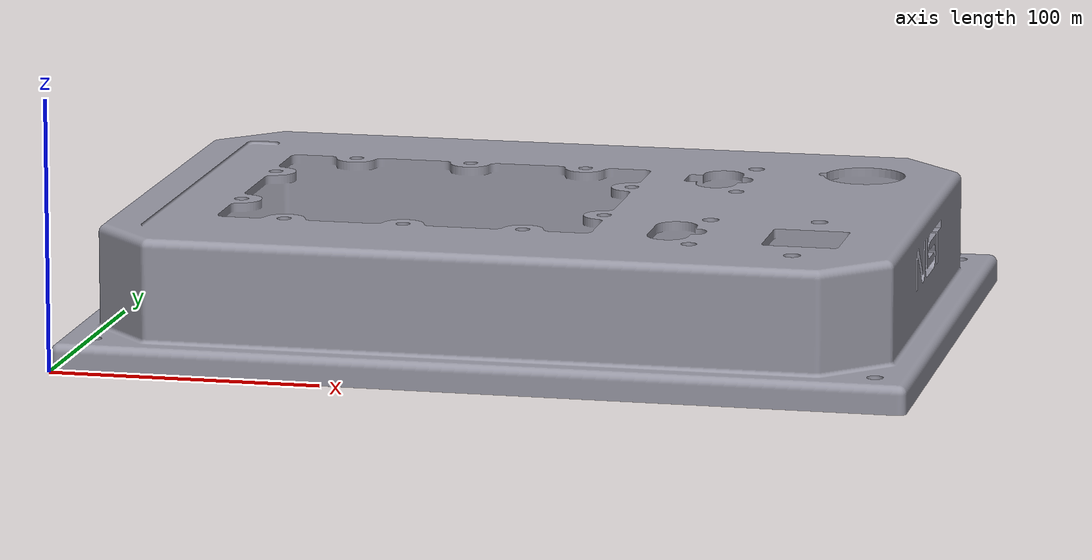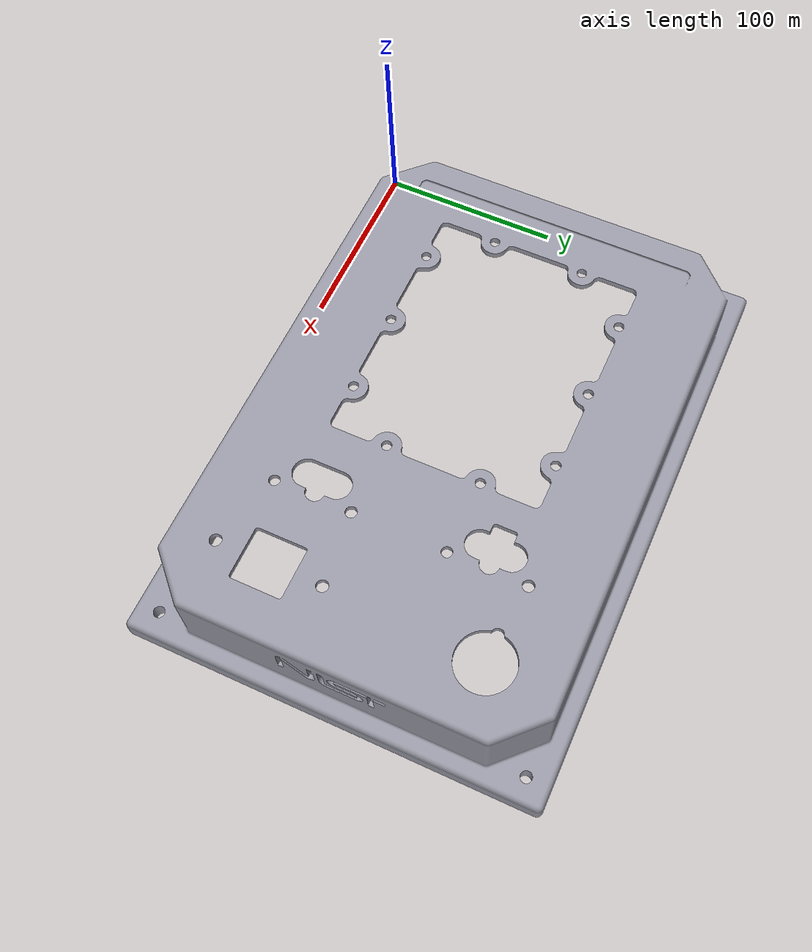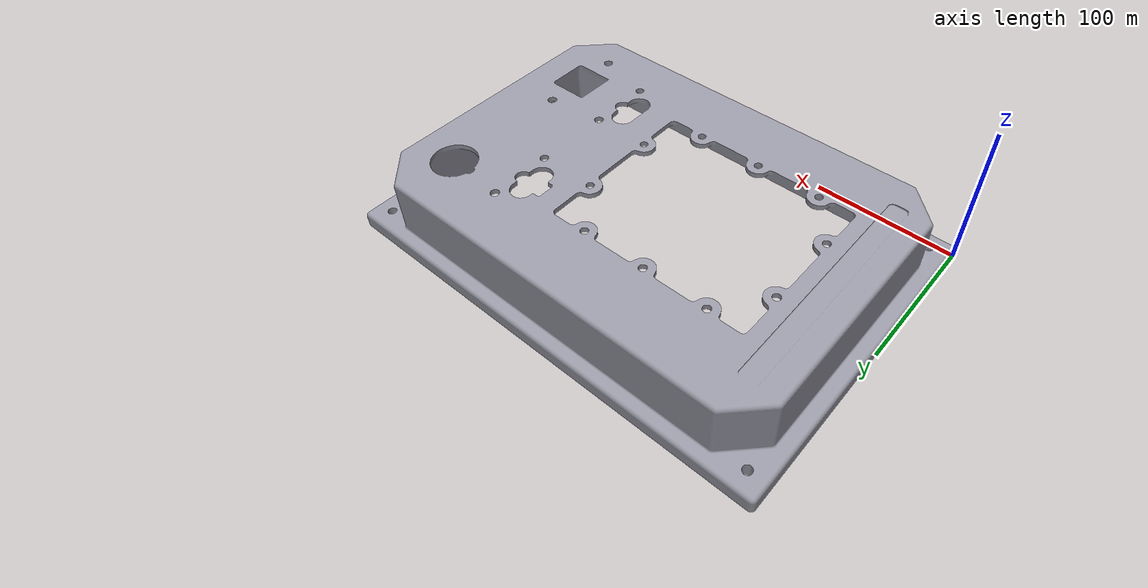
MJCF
<mujoco model="nist_lid">
  <asset>
    <material name="steel_visual_nist_lid" rgba="0.6 0.6 0.65 1.0" specular="0.8" shininess="0.9" reflectance="0.6"/>
    <material name="steel_nist_lid" rgba="0.6 0.6 0.65 0.0" specular="0.8" shininess="0.9" reflectance="0.6"/>
    <mesh name="nist_lid" file="collision/nist_lid.obj"/>
    <mesh name="nist_lid_collision_0" file="collision/nist_lid_collision_0.obj"/>
    <mesh name="nist_lid_collision_1" file="collision/nist_lid_collision_1.obj"/>
    <mesh name="nist_lid_collision_2" file="collision/nist_lid_collision_2.obj"/>
    <mesh name="nist_lid_collision_3" file="collision/nist_lid_collision_3.obj"/>
    <mesh name="nist_lid_collision_4" file="collision/nist_lid_collision_4.obj"/>
    <mesh name="nist_lid_collision_5" file="collision/nist_lid_collision_5.obj"/>
    <mesh name="nist_lid_collision_6" file="collision/nist_lid_collision_6.obj"/>
    <mesh name="nist_lid_collision_7" file="collision/nist_lid_collision_7.obj"/>
    <mesh name="nist_lid_collision_8" file="collision/nist_lid_collision_8.obj"/>
    <mesh name="nist_lid_collision_9" file="collision/nist_lid_collision_9.obj"/>
    <mesh name="nist_lid_collision_10" file="collision/nist_lid_collision_10.obj"/>
    <mesh name="nist_lid_collision_11" file="collision/nist_lid_collision_11.obj"/>
    <mesh name="nist_lid_collision_12" file="collision/nist_lid_collision_12.obj"/>
    <mesh name="nist_lid_collision_13" file="collision/nist_lid_collision_13.obj"/>
    <mesh name="nist_lid_collision_14" file="collision/nist_lid_collision_14.obj"/>
    <mesh name="nist_lid_collision_15" file="collision/nist_lid_collision_15.obj"/>
    <mesh name="nist_lid_collision_16" file="collision/nist_lid_collision_16.obj"/>
    <mesh name="nist_lid_collision_17" file="collision/nist_lid_collision_17.obj"/>
    <mesh name="nist_lid_collision_18" file="collision/nist_lid_collision_18.obj"/>
    <mesh name="nist_lid_collision_19" file="collision/nist_lid_collision_19.obj"/>
    <mesh name="nist_lid_collision_20" file="collision/nist_lid_collision_20.obj"/>
    <mesh name="nist_lid_collision_21" file="collision/nist_lid_collision_21.obj"/>
    <mesh name="nist_lid_collision_22" file="collision/nist_lid_collision_22.obj"/>
    <mesh name="nist_lid_collision_23" file="collision/nist_lid_collision_23.obj"/>
    <mesh name="nist_lid_collision_24" file="collision/nist_lid_collision_24.obj"/>
    <mesh name="nist_lid_collision_25" file="collision/nist_lid_collision_25.obj"/>
    <mesh name="nist_lid_collision_26" file="collision/nist_lid_collision_26.obj"/>
    <mesh name="nist_lid_collision_27" file="collision/nist_lid_collision_27.obj"/>
    <mesh name="nist_lid_collision_28" file="collision/nist_lid_collision_28.obj"/>
    <mesh name="nist_lid_collision_29" file="collision/nist_lid_collision_29.obj"/>
    <mesh name="nist_lid_collision_30" file="collision/nist_lid_collision_30.obj"/>
    <mesh name="nist_lid_collision_31" file="collision/nist_lid_collision_31.obj"/>
    <mesh name="nist_lid_collision_32" file="collision/nist_lid_collision_32.obj"/>
    <mesh name="nist_lid_collision_33" file="collision/nist_lid_collision_33.obj"/>
    <mesh name="nist_lid_collision_34" file="collision/nist_lid_collision_34.obj"/>
    <mesh name="nist_lid_collision_35" file="collision/nist_lid_collision_35.obj"/>
    <mesh name="nist_lid_collision_36" file="collision/nist_lid_collision_36.obj"/>
    <mesh name="nist_lid_collision_37" file="collision/nist_lid_collision_37.obj"/>
    <mesh name="nist_lid_collision_38" file="collision/nist_lid_collision_38.obj"/>
    <mesh name="nist_lid_collision_39" file="collision/nist_lid_collision_39.obj"/>
    <mesh name="nist_lid_collision_40" file="collision/nist_lid_collision_40.obj"/>
    <mesh name="nist_lid_collision_41" file="collision/nist_lid_collision_41.obj"/>
    <mesh name="nist_lid_collision_42" file="collision/nist_lid_collision_42.obj"/>
    <mesh name="nist_lid_collision_43" file="collision/nist_lid_collision_43.obj"/>
    <mesh name="nist_lid_collision_44" file="collision/nist_lid_collision_44.obj"/>
    <mesh name="nist_lid_collision_45" file="collision/nist_lid_collision_45.obj"/>
    <mesh name="nist_lid_collision_46" file="collision/nist_lid_collision_46.obj"/>
    <mesh name="nist_lid_collision_47" file="collision/nist_lid_collision_47.obj"/>
    <mesh name="nist_lid_collision_48" file="collision/nist_lid_collision_48.obj"/>
    <mesh name="nist_lid_collision_49" file="collision/nist_lid_collision_49.obj"/>
    <mesh name="nist_lid_collision_50" file="collision/nist_lid_collision_50.obj"/>
    <mesh name="nist_lid_collision_51" file="collision/nist_lid_collision_51.obj"/>
    <mesh name="nist_lid_collision_52" file="collision/nist_lid_collision_52.obj"/>
    <mesh name="nist_lid_collision_53" file="collision/nist_lid_collision_53.obj"/>
    <mesh name="nist_lid_collision_54" file="collision/nist_lid_collision_54.obj"/>
    <mesh name="nist_lid_collision_55" file="collision/nist_lid_collision_55.obj"/>
    <mesh name="nist_lid_collision_56" file="collision/nist_lid_collision_56.obj"/>
    <mesh name="nist_lid_collision_57" file="collision/nist_lid_collision_57.obj"/>
    <mesh name="nist_lid_collision_58" file="collision/nist_lid_collision_58.obj"/>
    <mesh name="nist_lid_collision_59" file="collision/nist_lid_collision_59.obj"/>
    <mesh name="nist_lid_collision_60" file="collision/nist_lid_collision_60.obj"/>
    <mesh name="nist_lid_collision_61" file="collision/nist_lid_collision_61.obj"/>
    <mesh name="nist_lid_collision_62" file="collision/nist_lid_collision_62.obj"/>
    <mesh name="nist_lid_collision_63" file="collision/nist_lid_collision_63.obj"/>
    <mesh name="nist_lid_collision_64" file="collision/nist_lid_collision_64.obj"/>
    <mesh name="nist_lid_collision_65" file="collision/nist_lid_collision_65.obj"/>
    <mesh name="nist_lid_collision_66" file="collision/nist_lid_collision_66.obj"/>
    <mesh name="nist_lid_collision_67" file="collision/nist_lid_collision_67.obj"/>
    <mesh name="nist_lid_collision_68" file="collision/nist_lid_collision_68.obj"/>
    <mesh name="nist_lid_collision_69" file="collision/nist_lid_collision_69.obj"/>
    <mesh name="nist_lid_collision_70" file="collision/nist_lid_collision_70.obj"/>
    <mesh name="nist_lid_collision_71" file="collision/nist_lid_collision_71.obj"/>
    <mesh name="nist_lid_collision_72" file="collision/nist_lid_collision_72.obj"/>
    <mesh name="nist_lid_collision_73" file="collision/nist_lid_collision_73.obj"/>
    <mesh name="nist_lid_collision_74" file="collision/nist_lid_collision_74.obj"/>
    <mesh name="nist_lid_collision_75" file="collision/nist_lid_collision_75.obj"/>
    <mesh name="nist_lid_collision_76" file="collision/nist_lid_collision_76.obj"/>
    <mesh name="nist_lid_collision_77" file="collision/nist_lid_collision_77.obj"/>
    <mesh name="nist_lid_collision_78" file="collision/nist_lid_collision_78.obj"/>
    <mesh name="nist_lid_collision_79" file="collision/nist_lid_collision_79.obj"/>
    <mesh name="nist_lid_collision_80" file="collision/nist_lid_collision_80.obj"/>
    <mesh name="nist_lid_collision_81" file="collision/nist_lid_collision_81.obj"/>
    <mesh name="nist_lid_collision_82" file="collision/nist_lid_collision_82.obj"/>
    <mesh name="nist_lid_collision_83" file="collision/nist_lid_collision_83.obj"/>
    <mesh name="nist_lid_collision_84" file="collision/nist_lid_collision_84.obj"/>
    <mesh name="nist_lid_collision_85" file="collision/nist_lid_collision_85.obj"/>
    <mesh name="nist_lid_collision_86" file="collision/nist_lid_collision_86.obj"/>
    <mesh name="nist_lid_collision_87" file="collision/nist_lid_collision_87.obj"/>
    <mesh name="nist_lid_collision_88" file="collision/nist_lid_collision_88.obj"/>
    <mesh name="nist_lid_collision_89" file="collision/nist_lid_collision_89.obj"/>
    <mesh name="nist_lid_collision_90" file="collision/nist_lid_collision_90.obj"/>
    <mesh name="nist_lid_collision_91" file="collision/nist_lid_collision_91.obj"/>
    <mesh name="nist_lid_collision_92" file="collision/nist_lid_collision_92.obj"/>
    <mesh name="nist_lid_collision_93" file="collision/nist_lid_collision_93.obj"/>
    <mesh name="nist_lid_collision_94" file="collision/nist_lid_collision_94.obj"/>
    <mesh name="nist_lid_collision_95" file="collision/nist_lid_collision_95.obj"/>
    <mesh name="nist_lid_collision_96" file="collision/nist_lid_collision_96.obj"/>
    <mesh name="nist_lid_collision_97" file="collision/nist_lid_collision_97.obj"/>
    <mesh name="nist_lid_collision_98" file="collision/nist_lid_collision_98.obj"/>
    <mesh name="nist_lid_collision_99" file="collision/nist_lid_collision_99.obj"/>
    <mesh name="nist_lid_collision_100" file="collision/nist_lid_collision_100.obj"/>
    <mesh name="nist_lid_collision_101" file="collision/nist_lid_collision_101.obj"/>
    <mesh name="nist_lid_collision_102" file="collision/nist_lid_collision_102.obj"/>
    <mesh name="nist_lid_collision_103" file="collision/nist_lid_collision_103.obj"/>
    <mesh name="nist_lid_collision_104" file="collision/nist_lid_collision_104.obj"/>
    <mesh name="nist_lid_collision_105" file="collision/nist_lid_collision_105.obj"/>
    <mesh name="nist_lid_collision_106" file="collision/nist_lid_collision_106.obj"/>
    <mesh name="nist_lid_collision_107" file="collision/nist_lid_collision_107.obj"/>
    <mesh name="nist_lid_collision_108" file="collision/nist_lid_collision_108.obj"/>
    <mesh name="nist_lid_collision_109" file="collision/nist_lid_collision_109.obj"/>
    <mesh name="nist_lid_collision_110" file="collision/nist_lid_collision_110.obj"/>
    <mesh name="nist_lid_collision_111" file="collision/nist_lid_collision_111.obj"/>
    <mesh name="nist_lid_collision_112" file="collision/nist_lid_collision_112.obj"/>
    <mesh name="nist_lid_collision_113" file="collision/nist_lid_collision_113.obj"/>
    <mesh name="nist_lid_collision_114" file="collision/nist_lid_collision_114.obj"/>
    <mesh name="nist_lid_collision_115" file="collision/nist_lid_collision_115.obj"/>
    <mesh name="nist_lid_collision_116" file="collision/nist_lid_collision_116.obj"/>
    <mesh name="nist_lid_collision_117" file="collision/nist_lid_collision_117.obj"/>
    <mesh name="nist_lid_collision_118" file="collision/nist_lid_collision_118.obj"/>
    <mesh name="nist_lid_collision_119" file="collision/nist_lid_collision_119.obj"/>
    <mesh name="nist_lid_collision_120" file="collision/nist_lid_collision_120.obj"/>
    <mesh name="nist_lid_collision_121" file="collision/nist_lid_collision_121.obj"/>
    <mesh name="nist_lid_collision_122" file="collision/nist_lid_collision_122.obj"/>
    <mesh name="nist_lid_collision_123" file="collision/nist_lid_collision_123.obj"/>
    <mesh name="nist_lid_collision_124" file="collision/nist_lid_collision_124.obj"/>
    <mesh name="nist_lid_collision_125" file="collision/nist_lid_collision_125.obj"/>
    <mesh name="nist_lid_collision_126" file="collision/nist_lid_collision_126.obj"/>
    <mesh name="nist_lid_collision_127" file="collision/nist_lid_collision_127.obj"/>
    <mesh name="nist_lid_collision_128" file="collision/nist_lid_collision_128.obj"/>
    <mesh name="nist_lid_collision_129" file="collision/nist_lid_collision_129.obj"/>
    <mesh name="nist_lid_collision_130" file="collision/nist_lid_collision_130.obj"/>
    <mesh name="nist_lid_collision_131" file="collision/nist_lid_collision_131.obj"/>
    <mesh name="nist_lid_collision_132" file="collision/nist_lid_collision_132.obj"/>
    <mesh name="nist_lid_collision_133" file="collision/nist_lid_collision_133.obj"/>
    <mesh name="nist_lid_collision_134" file="collision/nist_lid_collision_134.obj"/>
  </asset>
  <worldbody>
    <body>
      <body name="nist_lid">
        <geom mesh="nist_lid" type="mesh" group="1" contype="0" conaffinity="0" material="steel_visual_nist_lid"/>
        <geom mesh="nist_lid_collision_0" type="mesh" group="0" density="1800" friction="0.95 0.3 0.1" solimp="0.998 0.998 0.001" solref="0.00001 1" material="steel_nist_lid"/>
        <geom mesh="nist_lid_collision_1" type="mesh" group="0" density="1800" friction="0.95 0.3 0.1" solimp="0.998 0.998 0.001" solref="0.00001 1" material="steel_nist_lid"/>
        <geom mesh="nist_lid_collision_2" type="mesh" group="0" density="1800" friction="0.95 0.3 0.1" solimp="0.998 0.998 0.001" solref="0.00001 1" material="steel_nist_lid"/>
        <geom mesh="nist_lid_collision_3" type="mesh" group="0" density="1800" friction="0.95 0.3 0.1" solimp="0.998 0.998 0.001" solref="0.00001 1" material="steel_nist_lid"/>
        <geom mesh="nist_lid_collision_4" type="mesh" group="0" density="1800" friction="0.95 0.3 0.1" solimp="0.998 0.998 0.001" solref="0.00001 1" material="steel_nist_lid"/>
        <geom mesh="nist_lid_collision_5" type="mesh" group="0" density="1800" friction="0.95 0.3 0.1" solimp="0.998 0.998 0.001" solref="0.00001 1" material="steel_nist_lid"/>
        <geom mesh="nist_lid_collision_6" type="mesh" group="0" density="1800" friction="0.95 0.3 0.1" solimp="0.998 0.998 0.001" solref="0.00001 1" material="steel_nist_lid"/>
        <geom mesh="nist_lid_collision_7" type="mesh" group="0" density="1800" friction="0.95 0.3 0.1" solimp="0.998 0.998 0.001" solref="0.00001 1" material="steel_nist_lid"/>
        <geom mesh="nist_lid_collision_8" type="mesh" group="0" density="1800" friction="0.95 0.3 0.1" solimp="0.998 0.998 0.001" solref="0.00001 1" material="steel_nist_lid"/>
        <geom mesh="nist_lid_collision_9" type="mesh" group="0" density="1800" friction="0.95 0.3 0.1" solimp="0.998 0.998 0.001" solref="0.00001 1" material="steel_nist_lid"/>
        <geom mesh="nist_lid_collision_10" type="mesh" group="0" density="1800" friction="0.95 0.3 0.1" solimp="0.998 0.998 0.001" solref="0.00001 1" material="steel_nist_lid"/>
        <geom mesh="nist_lid_collision_11" type="mesh" group="0" density="1800" friction="0.95 0.3 0.1" solimp="0.998 0.998 0.001" solref="0.00001 1" material="steel_nist_lid"/>
        <geom mesh="nist_lid_collision_12" type="mesh" group="0" density="1800" friction="0.95 0.3 0.1" solimp="0.998 0.998 0.001" solref="0.00001 1" material="steel_nist_lid"/>
        <geom mesh="nist_lid_collision_13" type="mesh" group="0" density="1800" friction="0.95 0.3 0.1" solimp="0.998 0.998 0.001" solref="0.00001 1" material="steel_nist_lid"/>
        <geom mesh="nist_lid_collision_14" type="mesh" group="0" density="1800" friction="0.95 0.3 0.1" solimp="0.998 0.998 0.001" solref="0.00001 1" material="steel_nist_lid"/>
        <geom mesh="nist_lid_collision_15" type="mesh" group="0" density="1800" friction="0.95 0.3 0.1" solimp="0.998 0.998 0.001" solref="0.00001 1" material="steel_nist_lid"/>
        <geom mesh="nist_lid_collision_16" type="mesh" group="0" density="1800" friction="0.95 0.3 0.1" solimp="0.998 0.998 0.001" solref="0.00001 1" material="steel_nist_lid"/>
        <geom mesh="nist_lid_collision_17" type="mesh" group="0" density="1800" friction="0.95 0.3 0.1" solimp="0.998 0.998 0.001" solref="0.00001 1" material="steel_nist_lid"/>
        <geom mesh="nist_lid_collision_18" type="mesh" group="0" density="1800" friction="0.95 0.3 0.1" solimp="0.998 0.998 0.001" solref="0.00001 1" material="steel_nist_lid"/>
        <geom mesh="nist_lid_collision_19" type="mesh" group="0" density="1800" friction="0.95 0.3 0.1" solimp="0.998 0.998 0.001" solref="0.00001 1" material="steel_nist_lid"/>
        <geom mesh="nist_lid_collision_20" type="mesh" group="0" density="1800" friction="0.95 0.3 0.1" solimp="0.998 0.998 0.001" solref="0.00001 1" material="steel_nist_lid"/>
        <geom mesh="nist_lid_collision_21" type="mesh" group="0" density="1800" friction="0.95 0.3 0.1" solimp="0.998 0.998 0.001" solref="0.00001 1" material="steel_nist_lid"/>
        <geom mesh="nist_lid_collision_22" type="mesh" group="0" density="1800" friction="0.95 0.3 0.1" solimp="0.998 0.998 0.001" solref="0.00001 1" material="steel_nist_lid"/>
        <geom mesh="nist_lid_collision_23" type="mesh" group="0" density="1800" friction="0.95 0.3 0.1" solimp="0.998 0.998 0.001" solref="0.00001 1" material="steel_nist_lid"/>
        <geom mesh="nist_lid_collision_24" type="mesh" group="0" density="1800" friction="0.95 0.3 0.1" solimp="0.998 0.998 0.001" solref="0.00001 1" material="steel_nist_lid"/>
        <geom mesh="nist_lid_collision_25" type="mesh" group="0" density="1800" friction="0.95 0.3 0.1" solimp="0.998 0.998 0.001" solref="0.00001 1" material="steel_nist_lid"/>
        <geom mesh="nist_lid_collision_26" type="mesh" group="0" density="1800" friction="0.95 0.3 0.1" solimp="0.998 0.998 0.001" solref="0.00001 1" material="steel_nist_lid"/>
        <geom mesh="nist_lid_collision_27" type="mesh" group="0" density="1800" friction="0.95 0.3 0.1" solimp="0.998 0.998 0.001" solref="0.00001 1" material="steel_nist_lid"/>
        <geom mesh="nist_lid_collision_28" type="mesh" group="0" density="1800" friction="0.95 0.3 0.1" solimp="0.998 0.998 0.001" solref="0.00001 1" material="steel_nist_lid"/>
        <geom mesh="nist_lid_collision_29" type="mesh" group="0" density="1800" friction="0.95 0.3 0.1" solimp="0.998 0.998 0.001" solref="0.00001 1" material="steel_nist_lid"/>
        <geom mesh="nist_lid_collision_30" type="mesh" group="0" density="1800" friction="0.95 0.3 0.1" solimp="0.998 0.998 0.001" solref="0.00001 1" material="steel_nist_lid"/>
        <geom mesh="nist_lid_collision_31" type="mesh" group="0" density="1800" friction="0.95 0.3 0.1" solimp="0.998 0.998 0.001" solref="0.00001 1" material="steel_nist_lid"/>
        <geom mesh="nist_lid_collision_32" type="mesh" group="0" density="1800" friction="0.95 0.3 0.1" solimp="0.998 0.998 0.001" solref="0.00001 1" material="steel_nist_lid"/>
        <geom mesh="nist_lid_collision_33" type="mesh" group="0" density="1800" friction="0.95 0.3 0.1" solimp="0.998 0.998 0.001" solref="0.00001 1" material="steel_nist_lid"/>
        <geom mesh="nist_lid_collision_34" type="mesh" group="0" density="1800" friction="0.95 0.3 0.1" solimp="0.998 0.998 0.001" solref="0.00001 1" material="steel_nist_lid"/>
        <geom mesh="nist_lid_collision_35" type="mesh" group="0" density="1800" friction="0.95 0.3 0.1" solimp="0.998 0.998 0.001" solref="0.00001 1" material="steel_nist_lid"/>
        <geom mesh="nist_lid_collision_36" type="mesh" group="0" density="1800" friction="0.95 0.3 0.1" solimp="0.998 0.998 0.001" solref="0.00001 1" material="steel_nist_lid"/>
        <geom mesh="nist_lid_collision_37" type="mesh" group="0" density="1800" friction="0.95 0.3 0.1" solimp="0.998 0.998 0.001" solref="0.00001 1" material="steel_nist_lid"/>
        <geom mesh="nist_lid_collision_38" type="mesh" group="0" density="1800" friction="0.95 0.3 0.1" solimp="0.998 0.998 0.001" solref="0.00001 1" material="steel_nist_lid"/>
        <geom mesh="nist_lid_collision_39" type="mesh" group="0" density="1800" friction="0.95 0.3 0.1" solimp="0.998 0.998 0.001" solref="0.00001 1" material="steel_nist_lid"/>
        <geom mesh="nist_lid_collision_40" type="mesh" group="0" density="1800" friction="0.95 0.3 0.1" solimp="0.998 0.998 0.001" solref="0.00001 1" material="steel_nist_lid"/>
        <geom mesh="nist_lid_collision_41" type="mesh" group="0" density="1800" friction="0.95 0.3 0.1" solimp="0.998 0.998 0.001" solref="0.00001 1" material="steel_nist_lid"/>
        <geom mesh="nist_lid_collision_42" type="mesh" group="0" density="1800" friction="0.95 0.3 0.1" solimp="0.998 0.998 0.001" solref="0.00001 1" material="steel_nist_lid"/>
        <geom mesh="nist_lid_collision_43" type="mesh" group="0" density="1800" friction="0.95 0.3 0.1" solimp="0.998 0.998 0.001" solref="0.00001 1" material="steel_nist_lid"/>
        <geom mesh="nist_lid_collision_44" type="mesh" group="0" density="1800" friction="0.95 0.3 0.1" solimp="0.998 0.998 0.001" solref="0.00001 1" material="steel_nist_lid"/>
        <geom mesh="nist_lid_collision_45" type="mesh" group="0" density="1800" friction="0.95 0.3 0.1" solimp="0.998 0.998 0.001" solref="0.00001 1" material="steel_nist_lid"/>
        <geom mesh="nist_lid_collision_46" type="mesh" group="0" density="1800" friction="0.95 0.3 0.1" solimp="0.998 0.998 0.001" solref="0.00001 1" material="steel_nist_lid"/>
        <geom mesh="nist_lid_collision_47" type="mesh" group="0" density="1800" friction="0.95 0.3 0.1" solimp="0.998 0.998 0.001" solref="0.00001 1" material="steel_nist_lid"/>
        <geom mesh="nist_lid_collision_48" type="mesh" group="0" density="1800" friction="0.95 0.3 0.1" solimp="0.998 0.998 0.001" solref="0.00001 1" material="steel_nist_lid"/>
        <geom mesh="nist_lid_collision_49" type="mesh" group="0" density="1800" friction="0.95 0.3 0.1" solimp="0.998 0.998 0.001" solref="0.00001 1" material="steel_nist_lid"/>
        <geom mesh="nist_lid_collision_50" type="mesh" group="0" density="1800" friction="0.95 0.3 0.1" solimp="0.998 0.998 0.001" solref="0.00001 1" material="steel_nist_lid"/>
        <geom mesh="nist_lid_collision_51" type="mesh" group="0" density="1800" friction="0.95 0.3 0.1" solimp="0.998 0.998 0.001" solref="0.00001 1" material="steel_nist_lid"/>
        <geom mesh="nist_lid_collision_52" type="mesh" group="0" density="1800" friction="0.95 0.3 0.1" solimp="0.998 0.998 0.001" solref="0.00001 1" material="steel_nist_lid"/>
        <geom mesh="nist_lid_collision_53" type="mesh" group="0" density="1800" friction="0.95 0.3 0.1" solimp="0.998 0.998 0.001" solref="0.00001 1" material="steel_nist_lid"/>
        <geom mesh="nist_lid_collision_54" type="mesh" group="0" density="1800" friction="0.95 0.3 0.1" solimp="0.998 0.998 0.001" solref="0.00001 1" material="steel_nist_lid"/>
        <geom mesh="nist_lid_collision_55" type="mesh" group="0" density="1800" friction="0.95 0.3 0.1" solimp="0.998 0.998 0.001" solref="0.00001 1" material="steel_nist_lid"/>
        <geom mesh="nist_lid_collision_56" type="mesh" group="0" density="1800" friction="0.95 0.3 0.1" solimp="0.998 0.998 0.001" solref="0.00001 1" material="steel_nist_lid"/>
        <geom mesh="nist_lid_collision_57" type="mesh" group="0" density="1800" friction="0.95 0.3 0.1" solimp="0.998 0.998 0.001" solref="0.00001 1" material="steel_nist_lid"/>
        <geom mesh="nist_lid_collision_58" type="mesh" group="0" density="1800" friction="0.95 0.3 0.1" solimp="0.998 0.998 0.001" solref="0.00001 1" material="steel_nist_lid"/>
        <geom mesh="nist_lid_collision_59" type="mesh" group="0" density="1800" friction="0.95 0.3 0.1" solimp="0.998 0.998 0.001" solref="0.00001 1" material="steel_nist_lid"/>
        <geom mesh="nist_lid_collision_60" type="mesh" group="0" density="1800" friction="0.95 0.3 0.1" solimp="0.998 0.998 0.001" solref="0.00001 1" material="steel_nist_lid"/>
        <geom mesh="nist_lid_collision_61" type="mesh" group="0" density="1800" friction="0.95 0.3 0.1" solimp="0.998 0.998 0.001" solref="0.00001 1" material="steel_nist_lid"/>
        <geom mesh="nist_lid_collision_62" type="mesh" group="0" density="1800" friction="0.95 0.3 0.1" solimp="0.998 0.998 0.001" solref="0.00001 1" material="steel_nist_lid"/>
        <geom mesh="nist_lid_collision_63" type="mesh" group="0" density="1800" friction="0.95 0.3 0.1" solimp="0.998 0.998 0.001" solref="0.00001 1" material="steel_nist_lid"/>
        <geom mesh="nist_lid_collision_64" type="mesh" group="0" density="1800" friction="0.95 0.3 0.1" solimp="0.998 0.998 0.001" solref="0.00001 1" material="steel_nist_lid"/>
        <geom mesh="nist_lid_collision_65" type="mesh" group="0" density="1800" friction="0.95 0.3 0.1" solimp="0.998 0.998 0.001" solref="0.00001 1" material="steel_nist_lid"/>
        <geom mesh="nist_lid_collision_66" type="mesh" group="0" density="1800" friction="0.95 0.3 0.1" solimp="0.998 0.998 0.001" solref="0.00001 1" material="steel_nist_lid"/>
        <geom mesh="nist_lid_collision_67" type="mesh" group="0" density="1800" friction="0.95 0.3 0.1" solimp="0.998 0.998 0.001" solref="0.00001 1" material="steel_nist_lid"/>
        <geom mesh="nist_lid_collision_68" type="mesh" group="0" density="1800" friction="0.95 0.3 0.1" solimp="0.998 0.998 0.001" solref="0.00001 1" material="steel_nist_lid"/>
        <geom mesh="nist_lid_collision_69" type="mesh" group="0" density="1800" friction="0.95 0.3 0.1" solimp="0.998 0.998 0.001" solref="0.00001 1" material="steel_nist_lid"/>
        <geom mesh="nist_lid_collision_70" type="mesh" group="0" density="1800" friction="0.95 0.3 0.1" solimp="0.998 0.998 0.001" solref="0.00001 1" material="steel_nist_lid"/>
        <geom mesh="nist_lid_collision_71" type="mesh" group="0" density="1800" friction="0.95 0.3 0.1" solimp="0.998 0.998 0.001" solref="0.00001 1" material="steel_nist_lid"/>
        <geom mesh="nist_lid_collision_72" type="mesh" group="0" density="1800" friction="0.95 0.3 0.1" solimp="0.998 0.998 0.001" solref="0.00001 1" material="steel_nist_lid"/>
        <geom mesh="nist_lid_collision_73" type="mesh" group="0" density="1800" friction="0.95 0.3 0.1" solimp="0.998 0.998 0.001" solref="0.00001 1" material="steel_nist_lid"/>
        <geom mesh="nist_lid_collision_74" type="mesh" group="0" density="1800" friction="0.95 0.3 0.1" solimp="0.998 0.998 0.001" solref="0.00001 1" material="steel_nist_lid"/>
        <geom mesh="nist_lid_collision_75" type="mesh" group="0" density="1800" friction="0.95 0.3 0.1" solimp="0.998 0.998 0.001" solref="0.00001 1" material="steel_nist_lid"/>
        <geom mesh="nist_lid_collision_76" type="mesh" group="0" density="1800" friction="0.95 0.3 0.1" solimp="0.998 0.998 0.001" solref="0.00001 1" material="steel_nist_lid"/>
        <geom mesh="nist_lid_collision_77" type="mesh" group="0" density="1800" friction="0.95 0.3 0.1" solimp="0.998 0.998 0.001" solref="0.00001 1" material="steel_nist_lid"/>
        <geom mesh="nist_lid_collision_78" type="mesh" group="0" density="1800" friction="0.95 0.3 0.1" solimp="0.998 0.998 0.001" solref="0.00001 1" material="steel_nist_lid"/>
        <geom mesh="nist_lid_collision_79" type="mesh" group="0" density="1800" friction="0.95 0.3 0.1" solimp="0.998 0.998 0.001" solref="0.00001 1" material="steel_nist_lid"/>
        <geom mesh="nist_lid_collision_80" type="mesh" group="0" density="1800" friction="0.95 0.3 0.1" solimp="0.998 0.998 0.001" solref="0.00001 1" material="steel_nist_lid"/>
        <geom mesh="nist_lid_collision_81" type="mesh" group="0" density="1800" friction="0.95 0.3 0.1" solimp="0.998 0.998 0.001" solref="0.00001 1" material="steel_nist_lid"/>
        <geom mesh="nist_lid_collision_82" type="mesh" group="0" density="1800" friction="0.95 0.3 0.1" solimp="0.998 0.998 0.001" solref="0.00001 1" material="steel_nist_lid"/>
        <geom mesh="nist_lid_collision_83" type="mesh" group="0" density="1800" friction="0.95 0.3 0.1" solimp="0.998 0.998 0.001" solref="0.00001 1" material="steel_nist_lid"/>
        <geom mesh="nist_lid_collision_84" type="mesh" group="0" density="1800" friction="0.95 0.3 0.1" solimp="0.998 0.998 0.001" solref="0.00001 1" material="steel_nist_lid"/>
        <geom mesh="nist_lid_collision_85" type="mesh" group="0" density="1800" friction="0.95 0.3 0.1" solimp="0.998 0.998 0.001" solref="0.00001 1" material="steel_nist_lid"/>
        <geom mesh="nist_lid_collision_86" type="mesh" group="0" density="1800" friction="0.95 0.3 0.1" solimp="0.998 0.998 0.001" solref="0.00001 1" material="steel_nist_lid"/>
        <geom mesh="nist_lid_collision_87" type="mesh" group="0" density="1800" friction="0.95 0.3 0.1" solimp="0.998 0.998 0.001" solref="0.00001 1" material="steel_nist_lid"/>
        <geom mesh="nist_lid_collision_88" type="mesh" group="0" density="1800" friction="0.95 0.3 0.1" solimp="0.998 0.998 0.001" solref="0.00001 1" material="steel_nist_lid"/>
        <geom mesh="nist_lid_collision_89" type="mesh" group="0" density="1800" friction="0.95 0.3 0.1" solimp="0.998 0.998 0.001" solref="0.00001 1" material="steel_nist_lid"/>
        <geom mesh="nist_lid_collision_90" type="mesh" group="0" density="1800" friction="0.95 0.3 0.1" solimp="0.998 0.998 0.001" solref="0.00001 1" material="steel_nist_lid"/>
        <geom mesh="nist_lid_collision_91" type="mesh" group="0" density="1800" friction="0.95 0.3 0.1" solimp="0.998 0.998 0.001" solref="0.00001 1" material="steel_nist_lid"/>
        <geom mesh="nist_lid_collision_92" type="mesh" group="0" density="1800" friction="0.95 0.3 0.1" solimp="0.998 0.998 0.001" solref="0.00001 1" material="steel_nist_lid"/>
        <geom mesh="nist_lid_collision_93" type="mesh" group="0" density="1800" friction="0.95 0.3 0.1" solimp="0.998 0.998 0.001" solref="0.00001 1" material="steel_nist_lid"/>
        <geom mesh="nist_lid_collision_94" type="mesh" group="0" density="1800" friction="0.95 0.3 0.1" solimp="0.998 0.998 0.001" solref="0.00001 1" material="steel_nist_lid"/>
        <geom mesh="nist_lid_collision_95" type="mesh" group="0" density="1800" friction="0.95 0.3 0.1" solimp="0.998 0.998 0.001" solref="0.00001 1" material="steel_nist_lid"/>
        <geom mesh="nist_lid_collision_96" type="mesh" group="0" density="1800" friction="0.95 0.3 0.1" solimp="0.998 0.998 0.001" solref="0.00001 1" material="steel_nist_lid"/>
        <geom mesh="nist_lid_collision_97" type="mesh" group="0" density="1800" friction="0.95 0.3 0.1" solimp="0.998 0.998 0.001" solref="0.00001 1" material="steel_nist_lid"/>
        <geom mesh="nist_lid_collision_98" type="mesh" group="0" density="1800" friction="0.95 0.3 0.1" solimp="0.998 0.998 0.001" solref="0.00001 1" material="steel_nist_lid"/>
        <geom mesh="nist_lid_collision_99" type="mesh" group="0" density="1800" friction="0.95 0.3 0.1" solimp="0.998 0.998 0.001" solref="0.00001 1" material="steel_nist_lid"/>
        <geom mesh="nist_lid_collision_100" type="mesh" group="0" density="1800" friction="0.95 0.3 0.1" solimp="0.998 0.998 0.001" solref="0.00001 1" material="steel_nist_lid"/>
        <geom mesh="nist_lid_collision_101" type="mesh" group="0" density="1800" friction="0.95 0.3 0.1" solimp="0.998 0.998 0.001" solref="0.00001 1" material="steel_nist_lid"/>
        <geom mesh="nist_lid_collision_102" type="mesh" group="0" density="1800" friction="0.95 0.3 0.1" solimp="0.998 0.998 0.001" solref="0.00001 1" material="steel_nist_lid"/>
        <geom mesh="nist_lid_collision_103" type="mesh" group="0" density="1800" friction="0.95 0.3 0.1" solimp="0.998 0.998 0.001" solref="0.00001 1" material="steel_nist_lid"/>
        <geom mesh="nist_lid_collision_104" type="mesh" group="0" density="1800" friction="0.95 0.3 0.1" solimp="0.998 0.998 0.001" solref="0.00001 1" material="steel_nist_lid"/>
        <geom mesh="nist_lid_collision_105" type="mesh" group="0" density="1800" friction="0.95 0.3 0.1" solimp="0.998 0.998 0.001" solref="0.00001 1" material="steel_nist_lid"/>
        <geom mesh="nist_lid_collision_106" type="mesh" group="0" density="1800" friction="0.95 0.3 0.1" solimp="0.998 0.998 0.001" solref="0.00001 1" material="steel_nist_lid"/>
        <geom mesh="nist_lid_collision_107" type="mesh" group="0" density="1800" friction="0.95 0.3 0.1" solimp="0.998 0.998 0.001" solref="0.00001 1" material="steel_nist_lid"/>
        <geom mesh="nist_lid_collision_108" type="mesh" group="0" density="1800" friction="0.95 0.3 0.1" solimp="0.998 0.998 0.001" solref="0.00001 1" material="steel_nist_lid"/>
        <geom mesh="nist_lid_collision_109" type="mesh" group="0" density="1800" friction="0.95 0.3 0.1" solimp="0.998 0.998 0.001" solref="0.00001 1" material="steel_nist_lid"/>
        <geom mesh="nist_lid_collision_110" type="mesh" group="0" density="1800" friction="0.95 0.3 0.1" solimp="0.998 0.998 0.001" solref="0.00001 1" material="steel_nist_lid"/>
        <geom mesh="nist_lid_collision_111" type="mesh" group="0" density="1800" friction="0.95 0.3 0.1" solimp="0.998 0.998 0.001" solref="0.00001 1" material="steel_nist_lid"/>
        <geom mesh="nist_lid_collision_112" type="mesh" group="0" density="1800" friction="0.95 0.3 0.1" solimp="0.998 0.998 0.001" solref="0.00001 1" material="steel_nist_lid"/>
        <geom mesh="nist_lid_collision_113" type="mesh" group="0" density="1800" friction="0.95 0.3 0.1" solimp="0.998 0.998 0.001" solref="0.00001 1" material="steel_nist_lid"/>
        <geom mesh="nist_lid_collision_114" type="mesh" group="0" density="1800" friction="0.95 0.3 0.1" solimp="0.998 0.998 0.001" solref="0.00001 1" material="steel_nist_lid"/>
        <geom mesh="nist_lid_collision_115" type="mesh" group="0" density="1800" friction="0.95 0.3 0.1" solimp="0.998 0.998 0.001" solref="0.00001 1" material="steel_nist_lid"/>
        <geom mesh="nist_lid_collision_116" type="mesh" group="0" density="1800" friction="0.95 0.3 0.1" solimp="0.998 0.998 0.001" solref="0.00001 1" material="steel_nist_lid"/>
        <geom mesh="nist_lid_collision_117" type="mesh" group="0" density="1800" friction="0.95 0.3 0.1" solimp="0.998 0.998 0.001" solref="0.00001 1" material="steel_nist_lid"/>
        <geom mesh="nist_lid_collision_118" type="mesh" group="0" density="1800" friction="0.95 0.3 0.1" solimp="0.998 0.998 0.001" solref="0.00001 1" material="steel_nist_lid"/>
        <geom mesh="nist_lid_collision_119" type="mesh" group="0" density="1800" friction="0.95 0.3 0.1" solimp="0.998 0.998 0.001" solref="0.00001 1" material="steel_nist_lid"/>
        <geom mesh="nist_lid_collision_120" type="mesh" group="0" density="1800" friction="0.95 0.3 0.1" solimp="0.998 0.998 0.001" solref="0.00001 1" material="steel_nist_lid"/>
        <geom mesh="nist_lid_collision_121" type="mesh" group="0" density="1800" friction="0.95 0.3 0.1" solimp="0.998 0.998 0.001" solref="0.00001 1" material="steel_nist_lid"/>
        <geom mesh="nist_lid_collision_122" type="mesh" group="0" density="1800" friction="0.95 0.3 0.1" solimp="0.998 0.998 0.001" solref="0.00001 1" material="steel_nist_lid"/>
        <geom mesh="nist_lid_collision_123" type="mesh" group="0" density="1800" friction="0.95 0.3 0.1" solimp="0.998 0.998 0.001" solref="0.00001 1" material="steel_nist_lid"/>
        <geom mesh="nist_lid_collision_124" type="mesh" group="0" density="1800" friction="0.95 0.3 0.1" solimp="0.998 0.998 0.001" solref="0.00001 1" material="steel_nist_lid"/>
        <geom mesh="nist_lid_collision_125" type="mesh" group="0" density="1800" friction="0.95 0.3 0.1" solimp="0.998 0.998 0.001" solref="0.00001 1" material="steel_nist_lid"/>
        <geom mesh="nist_lid_collision_126" type="mesh" group="0" density="1800" friction="0.95 0.3 0.1" solimp="0.998 0.998 0.001" solref="0.00001 1" material="steel_nist_lid"/>
        <geom mesh="nist_lid_collision_127" type="mesh" group="0" density="1800" friction="0.95 0.3 0.1" solimp="0.998 0.998 0.001" solref="0.00001 1" material="steel_nist_lid"/>
        <geom mesh="nist_lid_collision_128" type="mesh" group="0" density="1800" friction="0.95 0.3 0.1" solimp="0.998 0.998 0.001" solref="0.00001 1" material="steel_nist_lid"/>
        <geom mesh="nist_lid_collision_129" type="mesh" group="0" density="1800" friction="0.95 0.3 0.1" solimp="0.998 0.998 0.001" solref="0.00001 1" material="steel_nist_lid"/>
        <geom mesh="nist_lid_collision_130" type="mesh" group="0" density="1800" friction="0.95 0.3 0.1" solimp="0.998 0.998 0.001" solref="0.00001 1" material="steel_nist_lid"/>
        <geom mesh="nist_lid_collision_131" type="mesh" group="0" density="1800" friction="0.95 0.3 0.1" solimp="0.998 0.998 0.001" solref="0.00001 1" material="steel_nist_lid"/>
        <geom mesh="nist_lid_collision_132" type="mesh" group="0" density="1800" friction="0.95 0.3 0.1" solimp="0.998 0.998 0.001" solref="0.00001 1" material="steel_nist_lid"/>
        <geom mesh="nist_lid_collision_133" type="mesh" group="0" density="1800" friction="0.95 0.3 0.1" solimp="0.998 0.998 0.001" solref="0.00001 1" material="steel_nist_lid"/>
        <geom mesh="nist_lid_collision_134" type="mesh" group="0" density="1800" friction="0.95 0.3 0.1" solimp="0.998 0.998 0.001" solref="0.00001 1" material="steel_nist_lid"/>
      </body>
    </body>
  </worldbody>
</mujoco>
